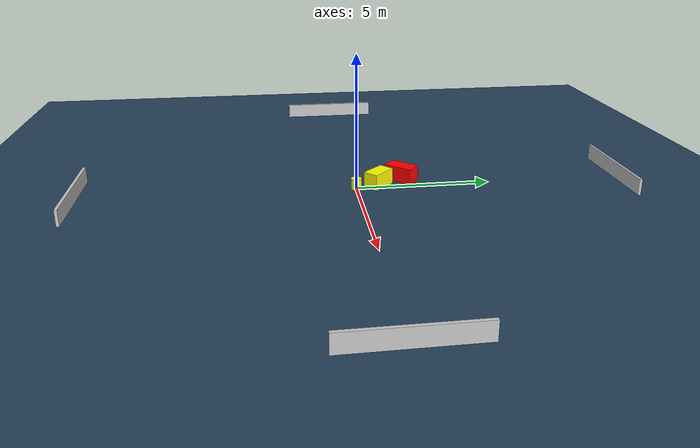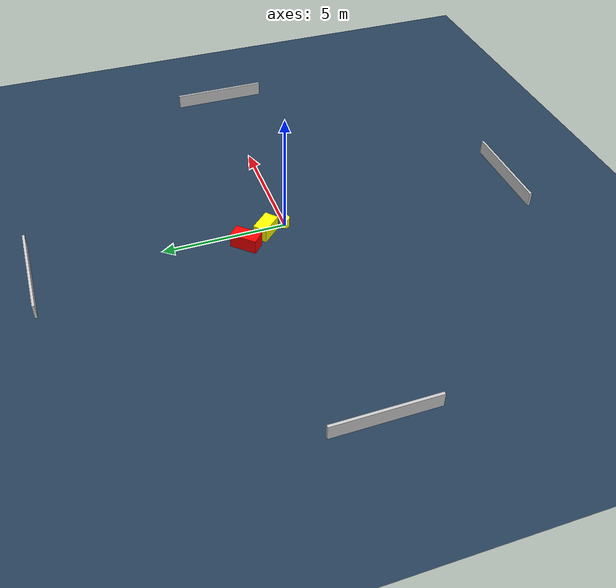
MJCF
<?xml version="1.0" ?>
<mujoco model="generated_environment">
  <option timestep="0.01" integrator="RK4" cone="elliptic"/>
  <default>
    <geom density="1"/>
  </default>
  <asset>
    <texture builtin="gradient" height="3072" name="skybox" rgb1="0.3 0.5 0.7" rgb2="0 0 0" type="skybox" width="512"/>
    <texture builtin="checker" height="300" name="groundplane" rgb1="0.2 0.3 0.4" rgb2="0.1 0.2 0.3" type="2d" width="300"/>
    <material name="groundplane" reflectance="0.2" texrepeat="5 5" texture="groundplane"/>
  </asset>
  <worldbody>
    <light dir="0 0 -1" directional="true" pos="0 0 1.5"/>
    <geom condim="3" friction="0.5 0.005 0.001" material="groundplane" name="floor" pos="0 0 0" size="0 0 0.05" type="plane"/>
    <body name="walls">
      <geom name="wall_1" condim="4" pos="-10.0 0.0 0.3" rgba="0.800000011920929 0.800000011920929 0.800000011920929 1.0" size="0.05 2.0 0.3" type="box"/>
      <geom name="wall_2" condim="4" pos="10.0 0.0 0.3" rgba="0.800000011920929 0.800000011920929 0.800000011920929 1.0" size="0.05 2.0 0.3" type="box"/>
      <geom name="wall_3" condim="4" pos="0.0 -10.0 0.3" rgba="0.800000011920929 0.800000011920929 0.800000011920929 1.0" size="2.0 0.05 0.3" type="box"/>
      <geom name="wall_4" condim="4" pos="0.0 10.0 0.3" rgba="0.800000011920929 0.800000011920929 0.800000011920929 1.0" size="2.0 0.05 0.3" type="box"/>
    </body>
    <body name="robot">
      <joint name="joint_x" type="slide" pos="0 0 0" axis="1 0 0"/>
      <joint name="joint_y" type="slide" pos="0 0 0" axis="0 1 0"/>
      <geom name="robot" type="cylinder" pos="0.0 0.0 0.2" size="0.2 0.2 0.0" mass="5.0" friction="1.0 0.005 0.0001" condim="4" rgba="1.0 1.0 0.0 1.0"/>
    </body>
    <body name="obstacle_1_movable">
      <geom name="obstacle_1_movable" condim="4" pos="-0.2053873456611007 0.8576655835185655 0.3" euler="0 0 223.1884993323714" friction="0.0 0.005 0.001" rgba="1.0 1.0 0.0 1.0" size="0.2841025081962087 0.4905607482923629 0.3" type="box" mass="0.1"/>
      <joint type="free"/>
    </body>
    <body name="obstacle_2_static">
      <geom name="obstacle_2_static" condim="4" pos="-0.6569914918952491 1.8072915866115569 0.3" euler="0 0 47.62807899572231" friction="0.0 0.005 0.001" rgba="1.0 0.0 0.0 1.0" size="0.5458388752133088 0.2952966265209809 0.3" type="box"/>
    </body>
  </worldbody>
  <actuator>
    <motor name="actuator_x" joint="joint_x" gear="1" ctrlrange="-1 1"/>
    <motor name="actuator_y" joint="joint_y" gear="1" ctrlrange="-1 1"/>
  </actuator>
</mujoco>
